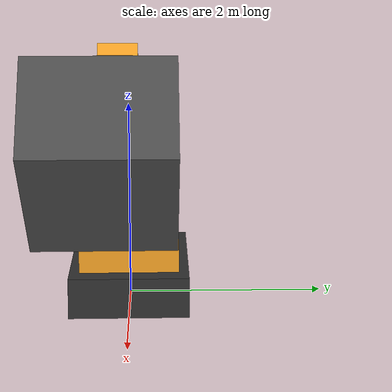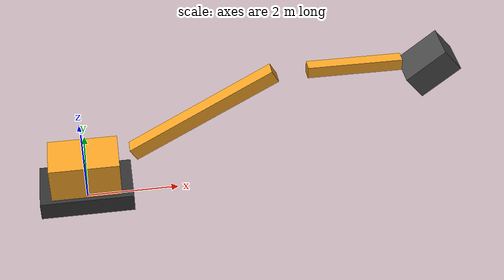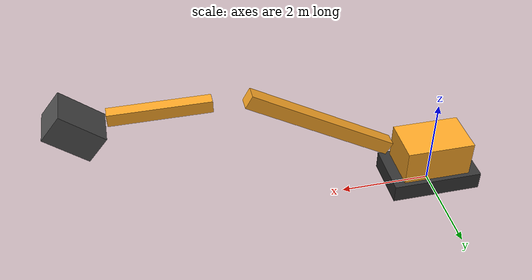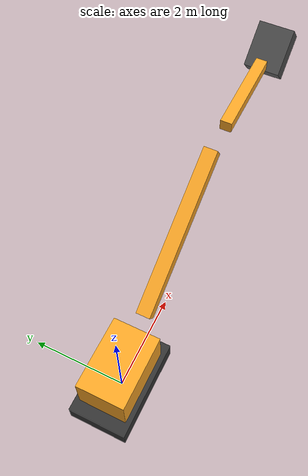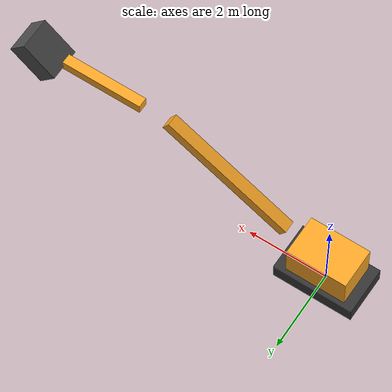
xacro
<?xml version="1.0"?>
<!--
  挖掘机URDF描述文件
  简化运动链：仅包含4个受控关节（rotation/boom/arm/bucket）
  闭合运动链（equality constraints）由MuJoCo内部处理，URDF仅用于：
    1. ros2_control的关节定义
    2. joint_state_publisher的关节广播
    3. RViz2的TF可视化
-->
<robot xmlns:xacro="http://www.ros.org/wiki/xacro" name="excavator">

  <!-- 引入ros2_control宏定义 -->
  <xacro:include filename="$(find excavator_ros2_bridge)/description/excavator.ros2_control.xacro"/>

  <!-- ==================== 材质定义 ==================== -->
  <material name="chassis_material">
    <color rgba="0.98 0.65 0.15 1.0"/>
  </material>
  <material name="boom_material">
    <color rgba="0.98 0.65 0.15 1.0"/>
  </material>
  <material name="bucket_material">
    <color rgba="0.3 0.3 0.3 1.0"/>
  </material>
  <material name="base_material">
    <color rgba="0.2 0.2 0.2 1.0"/>
  </material>

  <!-- ==================== 底盘(履带) ==================== -->
  <link name="base_link">
    <visual>
      <geometry>
        <box size="2.0 1.2 0.4"/>
      </geometry>
      <origin xyz="0 0 0.2" rpy="0 0 0"/>
      <material name="base_material"/>
    </visual>
    <inertial>
      <mass value="12200"/>
      <inertia ixx="4896" ixy="-29" ixz="-46" iyy="6689" iyz="-12" izz="10884"/>
    </inertial>
  </link>

  <!-- ==================== 回转关节 ==================== -->
  <!-- 对应MuJoCo: chassis关节 (hinge, Z轴旋转) -->
  <!-- 对应执行器: Rotation (velocity, kv=700000) -->
  <joint name="rotation_joint" type="revolute">
    <parent link="base_link"/>
    <child link="chassis_link"/>
    <origin xyz="0 0 0.4" rpy="0 0 0"/>
    <axis xyz="0 0 1"/>
    <limit lower="-3.14" upper="3.14" effort="100000" velocity="0.5"/>
  </joint>

  <link name="chassis_link">
    <visual>
      <geometry>
        <box size="1.5 1.0 0.8"/>
      </geometry>
      <origin xyz="0 0 0.4" rpy="0 0 0"/>
      <material name="chassis_material"/>
    </visual>
    <inertial>
      <mass value="20592"/>
      <inertia ixx="6958" ixy="-2311" ixz="-980" iyy="13393" iyz="-677" izz="17170"/>
    </inertial>
  </link>

  <!-- ==================== 动臂关节 ==================== -->
  <!-- 对应MuJoCo: chassis piston rod (slide, X轴伸缩) -->
  <!-- 对应执行器: Boom (velocity, kv=700000) -->
  <joint name="boom_joint" type="prismatic">
    <parent link="chassis_link"/>
    <child link="boom_link"/>
    <origin xyz="0.8 0 0.6" rpy="0 -0.524 0"/>
    <axis xyz="1 0 0"/>
    <limit lower="0.06" upper="0.56" effort="100000" velocity="0.5"/>
  </joint>

  <link name="boom_link">
    <visual>
      <geometry>
        <box size="3.5 0.3 0.3"/>
      </geometry>
      <origin xyz="1.75 0 0" rpy="0 0 0"/>
      <material name="boom_material"/>
    </visual>
    <inertial>
      <mass value="1600"/>
      <inertia ixx="87" ixy="-0.2" ixz="-14" iyy="1768" iyz="0.02" izz="1690"/>
    </inertial>
  </link>

  <!-- ==================== 斗杆关节 ==================== -->
  <!-- 对应MuJoCo: boom piston rod (slide, X轴伸缩) -->
  <!-- 对应执行器: Arm (velocity, kv=100000) -->
  <joint name="arm_joint" type="prismatic">
    <parent link="boom_link"/>
    <child link="arm_link"/>
    <origin xyz="3.5 0 0" rpy="0 0.524 0"/>
    <axis xyz="1 0 0"/>
    <limit lower="0.28" upper="1.1" effort="50000" velocity="0.5"/>
  </joint>

  <link name="arm_link">
    <visual>
      <geometry>
        <box size="2.0 0.25 0.25"/>
      </geometry>
      <origin xyz="1.0 0 0" rpy="0 0 0"/>
      <material name="boom_material"/>
    </visual>
    <inertial>
      <mass value="880"/>
      <inertia ixx="15" ixy="-0.2" ixz="23" iyy="302" iyz="0.02" izz="290"/>
    </inertial>
  </link>

  <!-- ==================== 铲斗关节 ==================== -->
  <!-- 对应MuJoCo: arm piston rod (slide, X轴伸缩) -->
  <!-- 对应执行器: Bucket (velocity, kv=100000) -->
  <joint name="bucket_joint" type="prismatic">
    <parent link="arm_link"/>
    <child link="bucket_link"/>
    <origin xyz="1.7 0 -0.5" rpy="0 -0.698 0"/>
    <axis xyz="1 0 0"/>
    <limit lower="0.15" upper="0.75" effort="50000" velocity="0.5"/>
  </joint>

  <link name="bucket_link">
    <visual>
      <geometry>
        <box size="1.0 0.8 0.6"/>
      </geometry>
      <origin xyz="0.5 0 -0.3" rpy="0 0 0"/>
      <material name="bucket_material"/>
    </visual>
    <inertial>
      <mass value="450"/>
      <inertia ixx="77" ixy="-0.2" ixz="-11" iyy="65" iyz="0.02" izz="55"/>
    </inertial>
  </link>

  <!-- ==================== ros2_control硬件接口标签 ==================== -->
  <xacro:excavator_ros2_control/>

</robot>
